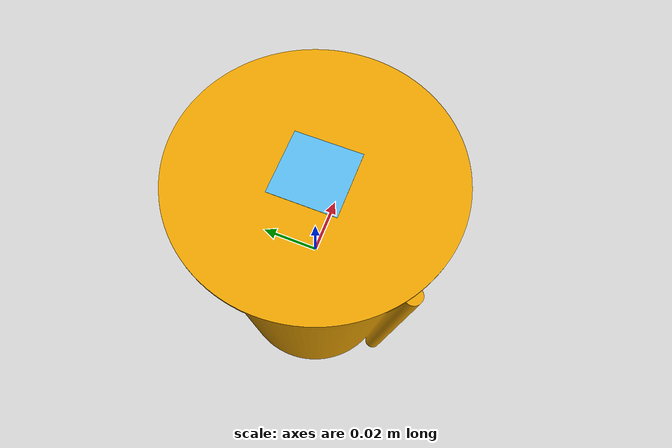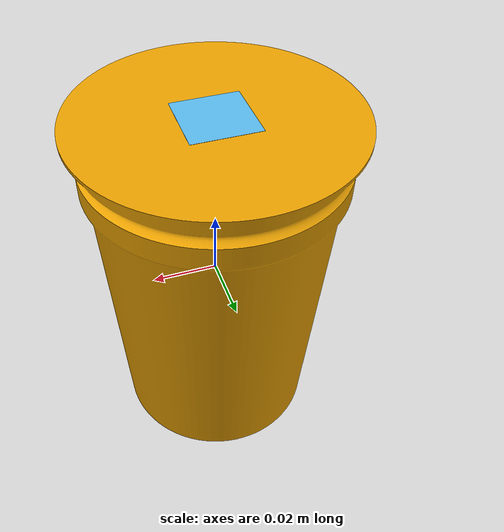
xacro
<robot xmlns:xacro="http://www.ros.org/wiki/xacro" name="drink">
  <xacro:arg name="use_ar_marker" default="true"/>
  <xacro:arg name="marker_id" default="0" />
  <xacro:macro name="cylinder_inertial" params="radius length mass *origin">
    <inertial>
      <mass value="${mass}" />
      <xacro:insert_block name="origin" />
      <inertia ixx="${0.0833333 * mass * (3 * radius * radius + length * length)}" ixy="0.0" ixz="0.0"
        iyy="${0.0833333 * mass * (3 * radius * radius + length * length)}" iyz="0.0"
        izz="${0.5 * mass * radius * radius}" />
    </inertial>
  </xacro:macro>
  <xacro:macro name="box_inertial" params="mass x y z *origin">
    <inertial>
      <mass value="${mass}" />
      <xacro:insert_block name="origin" />
      <inertia  ixx="${mass*(y*y+z*z)/12}" ixy = "0" ixz = "0"
                iyy="${mass*(x*x+z*z)/12}" iyz = "0"
                izz="${mass*(x*x+y*y)/12}" />
    </inertial>
  </xacro:macro>
  <xacro:macro name="drink">
    <link name="drink">
      <xacro:cylinder_inertial radius="${0.076/2}" length="0.108" mass="0.26">
        <origin xyz="0 0 0" rpy="0 0 0"/>
      </xacro:cylinder_inertial>
      <collision>
        <origin xyz="0 0 0"/>
        <geometry>
          <mesh filename="package://fcsc_description/mesh/drink_edit.stl" scale="1 1 1"/>
        </geometry>
      </collision>
      <visual>
        <origin xyz="0 0 0"/>
        <geometry>
          <mesh filename="package://fcsc_description/mesh/drink_edit.stl" scale="1 1 1"/>
        </geometry>
      </visual>
    </link>
    <gazebo reference="drink">
      <mu1 value="10000000"/>
      <mu2 value="10000000"/>
      <kp value="100000"/>
      <kd value="1.0"/>
      <minDepth value="0.01"/>
      <maxContacts value="100000000"/>
    </gazebo>
    <xacro:if value="$(arg use_ar_marker)">
      <link name="ar_marker">
        <xacro:box_inertial mass="0.0000001" x="0.05" y="0.05" z="0.0001">
          <origin xyz="0 0 0" rpy="0 0 1.5707"/>
        </xacro:box_inertial>
        <collision>
          <origin xyz="0 0 0" rpy="0 0 1.5707"/>
          <geometry>
            <box size="0.02 0.02 0.0001"/>
          </geometry>
        </collision>
        <visual>
          <origin xyz="0 0 0" rpy="0 0 1.5707"/>
          <geometry>
            <box size="0.02 0.02 0.0001"/>
          </geometry>
          <material name="ar_marker_$(arg marker_id)">
            <texture filename="package://fcsc_description/image/MarkerData_$(arg marker_id).png"/>
          </material>
        </visual>
      </link>
      <gazebo reference="ar_marker">
        <material>ar_marker_$(arg marker_id)</material>
      </gazebo>
      <joint name="ar" type="fixed">
        <parent link="drink"/>
        <child link="ar_marker"/>
        <origin xyz="0 0 ${0.108/2 + 0.001}" rpy="0 0 ${-1.57}"/>
      </joint>
    </xacro:if>

  </xacro:macro>
  <xacro:drink/>
</robot>
